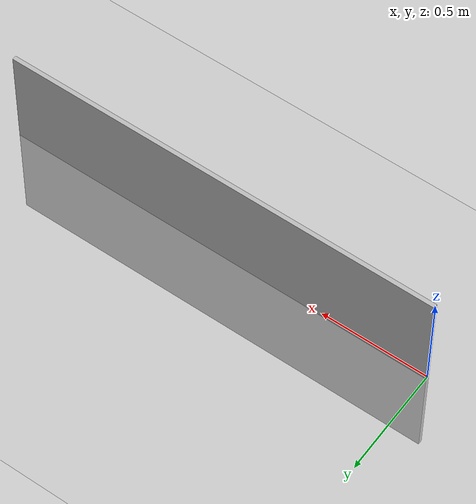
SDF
<?xml version="1.0" ?>
<sdf version="1.4">
  <!--Generated by blend2world.py-->
  <world name="default">
    <scene>
      <ambient>0.5 0.5 0.5 1</ambient>
      <background>0.5 0.5 0.5 1</background>
      <shadows>false</shadows>
    </scene>
    <plugin name="ros_interface_plugin" filename="librotors_gazebo_ros_interface_plugin.so"></plugin>
    <plugin name='gazebo_octomap' filename='librotors_gazebo_octomap_plugin.so'></plugin>

    <gui>
      <camera name="user_camera">
        <pose>0 0 30 0 1.57 1.57</pose>
      </camera>
    </gui>

    <physics type="ode">
      <gravity>0 0 -9.81</gravity>
      <ode>
        <solver>
          <type>quick</type>
          <iters>1000</iters>
          <sor>1.3</sor>
        </solver>
        <constraints>
          <cfm>0.0</cfm>
          <erp>0.2</erp>
          <contact_max_correcting_vel>100.0</contact_max_correcting_vel>
          <contact_surface_layer>0.01</contact_surface_layer>
        </constraints>
      </ode>
      <real_time_update_rate>100</real_time_update_rate>
      <real_time_factor>1</real_time_factor>
      <max_step_size>0.01</max_step_size>
    </physics>

    <light name="directional_light_1" type="directional">
      <cast_shadows>false</cast_shadows>
      <pose>0 0 30 0.1 0.1 0</pose>
      <diffuse>1.0 1.0 1.0 1</diffuse>
      <specular>.1 .1 .1 1</specular>
      <attenuation>
        <range>300</range>
      </attenuation>
      <direction>0.1 0.1 -1</direction>
    </light>

    <include>
      <uri>model://asphalt_plane</uri>
    </include>

    <include>
      <name>wall_2x1.084</name>
      <pose>1 0 0  0.0 0.0 0</pose>
      <uri>model://wall_2x1</uri>
    </include>

  </world>
</sdf>

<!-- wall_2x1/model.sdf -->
<sdf version="1.4">
  <!--Generated by blend2world.py-->
    <model name="wall_2x1">
      <pose>0.0 0.0 0.0  0.0 0.0 0.0</pose>
      <static>true</static>
      <link name="body">
        <collision name="collision">
          <geometry>
            <mesh>
              <uri>model://wall_2x1/meshes/wall_2x1.dae</uri>
              <scale>1 1 1</scale>
            </mesh>
          </geometry>
        </collision>
        <visual name="visual">
          <geometry>
            <mesh>
              <uri>model://wall_2x1/meshes/wall_2x1.dae</uri>
              <scale>1 1 1</scale>
            </mesh>
          </geometry>
	  <material>
            <script>
              <uri>model://wall_2x1/textures/chipboard.jpg</uri>
            </script>
          </material>
        </visual>
      </link>
    </model>
</sdf>
